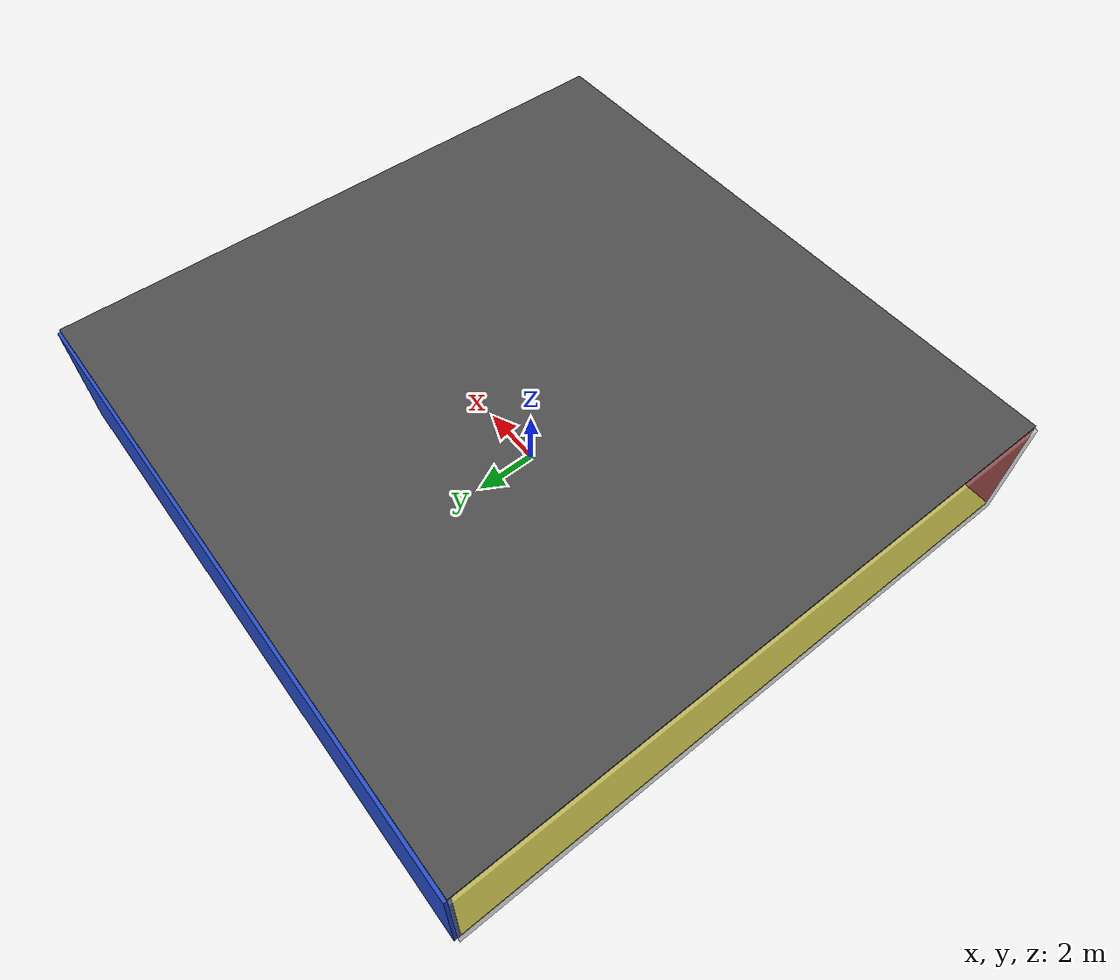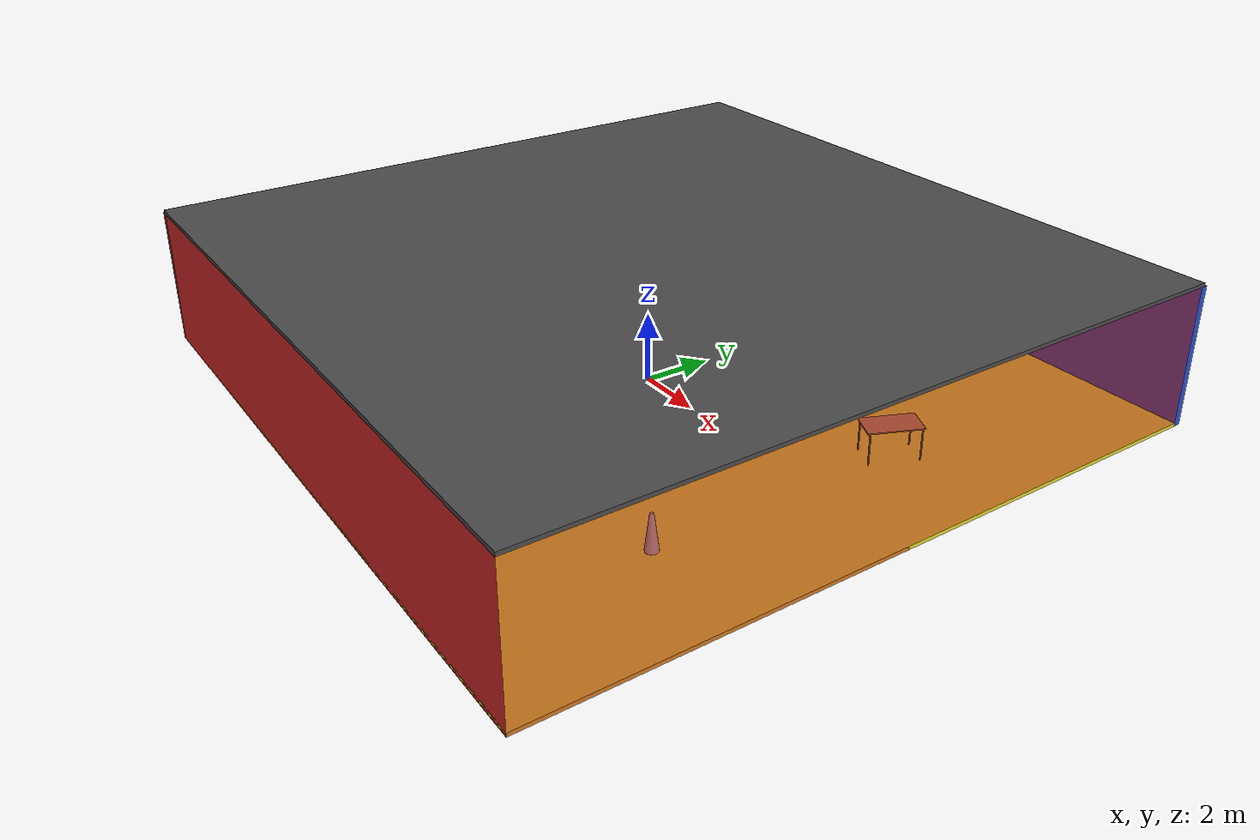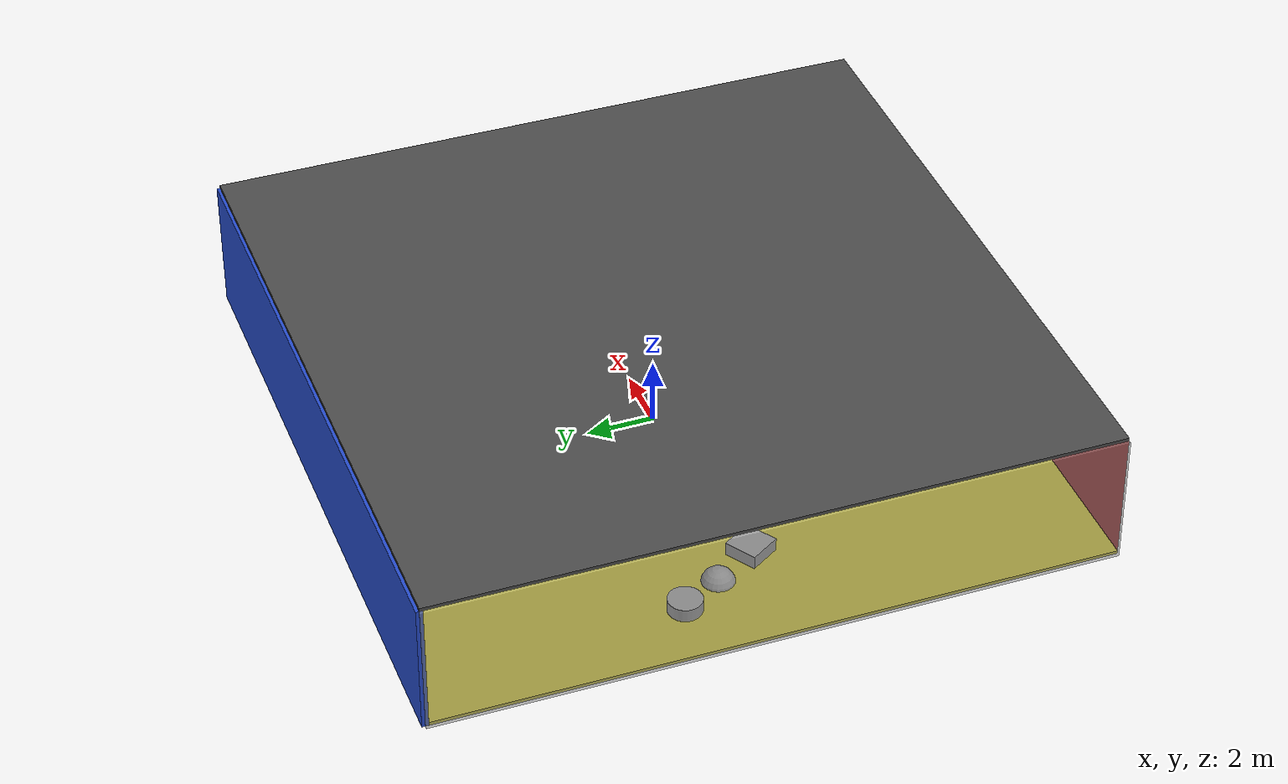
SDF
<sdf version="1.4">
 <world name="default">
  <physics type="ode">
   <max_step_size>0.001</max_step_size>
   <real_time_factor>1</real_time_factor>
   <real_time_update_rate>1000</real_time_update_rate>
   <gravity>0 0 -9.8</gravity>
  </physics>
  <scene><ambient>0.4 0.4 0.4 1</ambient><background>0.7 0.7 0.7 1</background><shadows>1</shadows></scene>
  <model name="Surrounding">
   <static>1</static>
   <link name="Ceiling">
    <collision name="Ceiling_Collision"><geometry><box><size>20 20 0.1</size></box></geometry></collision>
    <visual name="Ceiling_Visual">
     <geometry><box><size>20 20 0.1</size></box></geometry>
     <material>
      <script><uri>file://media/materials/scripts/gazebo.material</uri><name>Gazebo/Road</name></script>
     </material>
    </visual>
    <pose>0 0 4.05 0 0 0</pose>
   </link>
   <link name="Wall_South">
    <collision name="Wall_South_Collision">
     <geometry><box><size>20 0 4</size></box></geometry>
     <pose>0 0 2 0 -0 0</pose>
    </collision>
    <visual name="Wall_South_Visual">
     <pose>0 0 2 0 -0 0</pose>
     <geometry><box><size>20 0 4</size></box></geometry>
     <material>
      <script><uri>file://media/materials/scripts/gazebo.material</uri><name>Gazebo/RedBright</name></script>
     </material>
    </visual>
    <velocity_decay><linear>0</linear><angular>0</angular></velocity_decay>
    <pose>0 -10 0 0 -0 0</pose>
   </link>
   <link name="Wall_East">
    <collision name="Wall_21_Collision">
     <geometry><box><size>20 0 4</size></box></geometry>
     <pose>0 0 2 0 -0 0</pose>
    </collision>
    <visual name="Wall_21_Visual">
     <pose>0 0 2 0 -0 0</pose>
     <geometry><box><size>20 0 4</size></box></geometry>
     <material>
      <script><uri>file://media/materials/scripts/gazebo.material</uri><name>Gazebo/RedTransparent</name></script>
     </material>
    </visual>
    <velocity_decay><linear>0</linear><angular>0</angular></velocity_decay>
    <pose>10 0 0 0 -0 1.5708</pose>
   </link>
   <link name="Wall_North">
    <collision name="Wall_22_Collision">
     <geometry><box><size>20 0.2 4</size></box></geometry>
     <pose>0 0 2 0 -0 0</pose>
    </collision>
    <visual name="Wall_22_Visual">
     <pose>0 0 2 0 -0 0</pose>
     <geometry><box><size>20 0.2 4</size></box></geometry>
     <material>
      <script><uri>file://media/materials/scripts/gazebo.material</uri><name>Gazebo/BlueLaser</name></script>
     </material>
    </visual>
    <velocity_decay><linear>0</linear><angular>0</angular></velocity_decay>
    <pose>0 10 0 0 -0 0</pose>
   </link>
   <link name="Wall_West">
    <collision name="Wall_23_Collision">
     <geometry><box><size>20 0.2 4</size></box></geometry>
     <pose>0 0 2 0 -0 0</pose>
    </collision>
    <visual name="Wall_23_Visual">
     <pose>0 0 2 0 -0 0</pose>
     <geometry><box><size>20 0.2 4</size></box></geometry>
     <material>
      <script><uri>file://media/materials/scripts/gazebo.material</uri><name>Gazebo/GreyTransparent</name></script>
     </material>
    </visual>
    <velocity_decay><linear>0</linear><angular>0</angular></velocity_decay>
    <pose>-10 0 0 0 0 -1.5708</pose>
   </link>
   <link name="Ground_link">
    <collision name="collision">
     <pose>0 0 .05 0 -0 0</pose>
     <geometry><box><size>20 20 0.1</size></box></geometry>
    </collision>
    <visual name="visual">
     <pose>0 0 .05 0 -0 0</pose>
     <geometry><box><size>20 20 0.1</size></box></geometry>
     <material>
      <script><uri>file://media/materials/scripts/gazebo.material</uri><name>Gazebo/YellowGlow</name></script>
     </material>
    </visual>
   </link>
   <static>1</static>
  </model>
  <spherical_coordinates>
   <surface_model>EARTH_WGS84</surface_model>
   <latitude_deg>0</latitude_deg>
   <longitude_deg>0</longitude_deg>
   <elevation>0</elevation>
   <heading_deg>0</heading_deg>
  </spherical_coordinates>
  <light name="lightball_0" type="diffuse">
   <diffuse>0.8 0.8 0.8 1</diffuse>
   <specular>0.2 0.2 0.2 1</specular>
   <attenuation>
    <range>100</range>
    <constant>0.7</constant>
    <linear>0.01</linear>
    <quadratic>0.001</quadratic>
   </attenuation>
   <direction>-0.5 0.1 -0.9</direction>
   <pose>-2.47466725787 1.53208966198 2.6712046394 0 0 0</pose>
  </light>
  <include>
   <uri>model://textured_shapes</uri>
   <pose>-7.3634154438 0.803711607732 0 0 0 0.564842590141</pose>
  </include>
  <include><uri>model://cabinet</uri><pose>-5.49864284031 -5.46035783694 0 0 0 1.75387528331</pose></include>
  <include>
   <uri>model://construction_cone</uri>
   <pose>-1.66589077132 -1.54812429928 0 0 0 0.366767826321</pose>
  </include>
  <include><uri>model://cabinet</uri><pose>2.62352534838 -5.6035735672 0 0 0 1.67125159668</pose></include>
  <include><uri>model://table</uri><pose>0.798363402459 2.04449971104 0 0 0 0.778549380102</pose></include>
  <include><uri>model://cabinet</uri><pose>0.922738888259 7.76594245204 0 0 0 0.678229499934</pose></include>
  <include><uri>model://table</uri><pose>3.97663573784 -7.67892302283 0 0 0 2.65701357757</pose></include>
  <include>
   <uri>model://construction_cone</uri>
   <pose>6.86914544698 -4.61720821367 0 0 0 1.88340049331</pose>
  </include>
  <include><uri>model://table</uri><pose>6.90195861137 2.5901463164 0 0 0 1.1517345875</pose></include>
 </world>
</sdf>

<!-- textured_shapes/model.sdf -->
<sdf version="1.6">
  <model name="textured_shapes">
    <pose>0 0 0.5 0 0 0</pose>
    <link name="box">
      <pose>0 -1.5 0 0 0 0</pose>
      <collision name="collision">
        <geometry>
          <box>
            <size>1 1 1</size>
          </box>
        </geometry>
      </collision>
      <visual name="visual">
        <geometry>
          <box>
            <size>1 1 1</size>
          </box>
        </geometry>
        <material>
          <script>
            <uri>model://../model_source/models/textured_shapes/materials/scripts</uri>
            <uri>model://../model_source/models/textured_shapes/materials/textures</uri>
            <name>TexturedShape/Squares</name>
          </script>
        </material>
      </visual>
    </link>
    <link name="sphere">
      <collision name="collision">
        <geometry>
          <sphere>
            <radius>0.5</radius>
          </sphere>
        </geometry>
      </collision>
      <visual name="visual">
        <geometry>
          <sphere>
            <radius>0.5</radius>
          </sphere>
        </geometry>
        <material>
          <script>
            <uri>model://../model_source/models/textured_shapes/materials/scripts</uri>
            <uri>model://../model_source/models/textured_shapes/materials/textures</uri>
            <name>TexturedShape/Squares</name>
          </script>
        </material>
      </visual>
    </link>
    <link name="cylinder">
      <pose>0 1.5 0 0 0 0</pose>
      <collision name="collision">
        <geometry>
          <cylinder>
            <radius>0.5</radius>
            <length>1</length>
          </cylinder>
        </geometry>
      </collision>
      <visual name="visual">
        <geometry>
          <cylinder>
            <radius>0.5</radius>
            <length>1</length>
          </cylinder>
        </geometry>
        <material>
          <script>
            <uri>model://../model_source/models/textured_shapes/materials/scripts</uri>
            <uri>model://../model_source/models/textured_shapes/materials/textures</uri>
            <name>TexturedShape/Squares</name>
          </script>
        </material>
      </visual>
    </link>
  </model>
</sdf>

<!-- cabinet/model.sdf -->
<sdf version="1.5">
  <model name="cabinet">
    <static>true</static>
    <link name="cabinet_bottom_plate">
      <inertial>
        <pose>0 0 -1 0 0 0</pose>
        <inertia>
          <ixx>2.050000</ixx>
          <ixy>0</ixy>
          <ixz>0</ixz>
          <iyy>2.050000</iyy>
          <iyz>0</iyz>
          <izz>2.050000</izz>
        </inertia>
        <mass>25.000000</mass>
      </inertial>
      <collision name="cabinet_bottom_plate_geom">
        <pose>0 0 0.010000 0 0 0</pose>
        <geometry>
          <box>
            <size>0.450000 0.450000 0.020000</size>
          </box>
        </geometry>
      </collision>
      <visual name="cabinet_bottom_plate_geom_visual">
        <pose>0 0 0.010000 0 0 0</pose>
        <geometry>
          <box>
            <size>0.450000 0.450000 0.020000</size>
          </box>
        </geometry>
        <material>
          <script>
            <uri>model://media/materials/scripts/gazebo.material</uri>
            <name>Gazebo/Wood</name>
          </script>
        </material>
      </visual>
      <collision name="cabinet_bottom_plate_geom_cabinet_back_plate">
        <pose>0.235000 0 0.510000 0 0 0</pose>
        <geometry>
          <box>
            <size>0.020000 0.450000 1.020000</size>
          </box>
        </geometry>
      </collision>
      <visual name="cabinet_bottom_plate_geom_cabinet_back_plate_visual">
        <pose>0.235000 0 0.510000 0 0 0</pose>
        <geometry>
          <box>
            <size>0.020000 0.450000 1.020000</size>
          </box>
        </geometry>
        <material>
          <script>
            <uri>model://media/materials/scripts/gazebo.material</uri>
            <name>Gazebo/Wood</name>
          </script>
        </material>
      </visual>
      <collision name="cabinet_bottom_plate_geom_cabinet_left_plate">
        <pose>0 0.235000 0.510000 0 0 0</pose>
        <geometry>
          <box>
            <size>0.450000 0.020000 1.020000</size>
          </box>
        </geometry>
      </collision>
      <visual name="cabinet_bottom_plate_geom_cabinet_left_plate_visual">
        <pose>0 0.235000 0.510000 0 0 0</pose>
        <geometry>
          <box>
            <size>0.450000 0.020000 1.020000</size>
          </box>
        </geometry>
        <material>
          <script>
            <uri>model://media/materials/scripts/gazebo.material</uri>
            <name>Gazebo/Wood</name>
          </script>
        </material>
      </visual>
      <collision name="cabinet_bottom_plate_geom_cabinet_middle_plate">
        <pose>0 0 0.510000 0 0 0</pose>
        <geometry>
          <box>
            <size>0.450000 0.450000 0.020000</size>
          </box>
        </geometry>
      </collision>
      <visual name="cabinet_bottom_plate_geom_cabinet_middle_plate_visual">
        <pose>0 0 0.510000 0 0 0</pose>
        <geometry>
          <box>
            <size>0.450000 0.450000 0.020000</size>
          </box>
        </geometry>
        <material>
          <script>
            <uri>model://media/materials/scripts/gazebo.material</uri>
            <name>Gazebo/Wood</name>
          </script>
        </material>
      </visual>
      <collision name="cabinet_bottom_plate_geom_cabinet_right_plate">
        <pose>0 -0.235000 0.510000 0 0 0</pose>
        <geometry>
          <box>
            <size>0.450000 0.020000 1.020000</size>
          </box>
        </geometry>
      </collision>
      <visual name="cabinet_bottom_plate_geom_cabinet_right_plate_visual">
        <pose>0 -0.235000 0.510000 0 0 0</pose>
        <geometry>
          <box>
            <size>0.450000 0.020000 1.020000</size>
          </box>
        </geometry>
        <material>
          <script>
            <uri>model://media/materials/scripts/gazebo.material</uri>
            <name>Gazebo/Wood</name>
          </script>
        </material>
      </visual>
      <collision name="cabinet_bottom_plate_geom_cabinet_top_plate">
        <pose>0 0 1.010000 0 0 0</pose>
        <geometry>
          <box>
            <size>0.450000 0.450000 0.020000</size>
          </box>
        </geometry>
      </collision>
      <visual name="cabinet_bottom_plate_geom_cabinet_top_plate_visual">
        <pose>0 0 1.010000 0 0 0</pose>
        <geometry>
          <box>
            <size>0.450000 0.450000 0.020000</size>
          </box>
        </geometry>
        <material>
          <script>
            <uri>model://media/materials/scripts/gazebo.material</uri>
            <name>Gazebo/Wood</name>
          </script>
        </material>
      </visual>
    </link>
  </model>
</sdf>

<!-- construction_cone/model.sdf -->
<sdf version="1.5">
  <model name="Construction Cone">
    <link name="link">
      <collision name="collision">
        <geometry>
          <mesh>
            <scale>10 10 10</scale>
            <uri>file://isr-testbed/construction_cone/meshes/construction_cone.dae</uri>
          </mesh>
        </geometry>
      </collision>
      <visual name="visual">
        <geometry>
          <mesh>
            <scale>10 10 10</scale>
            <uri>file://isr-testbed/construction_cone/meshes/construction_cone.dae</uri>
          </mesh>
        </geometry>
      </visual>
    </link>
  </model>
</sdf>

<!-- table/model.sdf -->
<sdf version="1.5">
  <model name="table">
    <static>true</static>
    <link name="link">
      <collision name="surface">
        <pose>0 0 1.0 0 0 0</pose>
        <geometry>
          <box>
            <size>1.5 0.8 0.03</size>
          </box>
        </geometry>
        <surface>
          <friction>
            <ode>
              <mu>0.6</mu>
              <mu2>0.6</mu2>
            </ode>
          </friction>
        </surface>
      </collision>
      <visual name="visual1">
        <pose>0 0 1.0 0 0 0</pose>
        <geometry>
          <box>
            <size>1.5 0.8 0.03</size>
          </box>
        </geometry>
        <material>
          <script>
            <uri>model://media/materials/scripts/gazebo.material</uri>
            <name>Gazebo/Wood</name>
          </script>
        </material>
      </visual>
      <collision name="front_left_leg">
        <pose>0.68 0.38 0.5 0 0 0</pose>
        <geometry>
          <cylinder>
            <radius>0.02</radius>
            <length>1.0</length>
          </cylinder>
        </geometry>
      </collision>
      <visual name="front_left_leg">
        <pose>0.68 0.38 0.5 0 0 0</pose>
        <geometry>
          <cylinder>
            <radius>0.02</radius>
            <length>1.0</length>
          </cylinder>
        </geometry>
        <material>
          <script>
            <uri>model://media/materials/scripts/gazebo.material</uri>
            <name>Gazebo/Grey</name>
          </script>
        </material>
      </visual>
      <collision name="front_right_leg">
        <pose>0.68 -0.38 0.5 0 0 0</pose>
        <geometry>
          <cylinder>
            <radius>0.02</radius>
            <length>1.0</length>
          </cylinder>
        </geometry>
      </collision>
      <visual name="front_right_leg">
        <pose>0.68 -0.38 0.5 0 0 0</pose>
        <geometry>
          <cylinder>
            <radius>0.02</radius>
            <length>1.0</length>
          </cylinder>
        </geometry>
        <material>
          <script>
            <uri>model://media/materials/scripts/gazebo.material</uri>
            <name>Gazebo/Grey</name>
          </script>
        </material>
      </visual>
      <collision name="back_right_leg">
        <pose>-0.68 -0.38 0.5 0 0 0</pose>
        <geometry>
          <cylinder>
            <radius>0.02</radius>
            <length>1.0</length>
          </cylinder>
        </geometry>
      </collision>
      <visual name="back_right_leg">
        <pose>-0.68 -0.38 0.5 0 0 0</pose>
        <geometry>
          <cylinder>
            <radius>0.02</radius>
            <length>1.0</length>
          </cylinder>
        </geometry>
        <material>
          <script>
            <uri>model://media/materials/scripts/gazebo.material</uri>
            <name>Gazebo/Grey</name>
          </script>
        </material>
      </visual>
      <collision name="back_left_leg">
        <pose>-0.68 0.38 0.5 0 0 0</pose>
        <geometry>
          <cylinder>
            <radius>0.02</radius>
            <length>1.0</length>
          </cylinder>
        </geometry>
      </collision>
      <visual name="back_left_leg">
        <pose>-0.68 0.38 0.5 0 0 0</pose>
        <geometry>
          <cylinder>
            <radius>0.02</radius>
            <length>1.0</length>
          </cylinder>
        </geometry>
        <material>
          <script>
            <uri>model://media/materials/scripts/gazebo.material</uri>
            <name>Gazebo/Grey</name>
          </script>
        </material>
      </visual>
    </link>
  </model>
</sdf>
